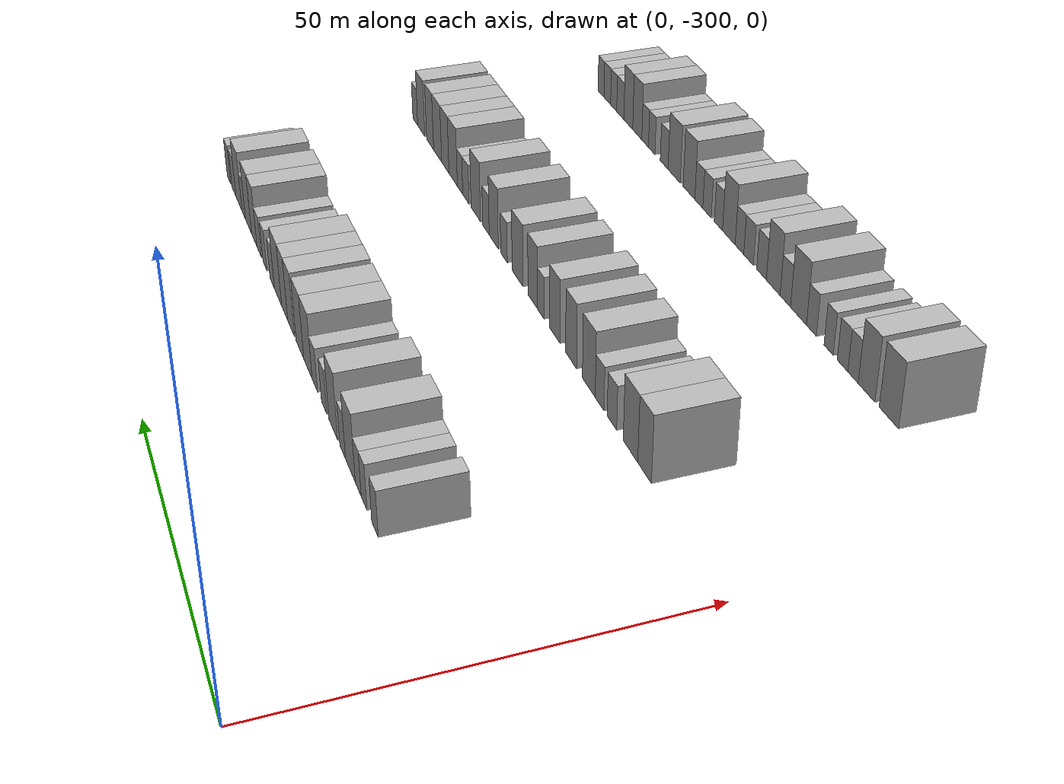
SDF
<sdf version="1.6">
 <world name="default">
  <model name="building_1">
   <static>1</static>
   <pose>25.0000 -277.6647 0 0.000000 0.000000 0.000000</pose>
   <link name="link">
    <pose>0 0 3.00 0 0 0</pose>
    <collision name="collision"><geometry><box><size>10.0000 2.6705 6.0000</size></box></geometry></collision>
    <visual name="visual">
     <cast_shadows>0</cast_shadows>
     <geometry><box><size>10.0000 2.6705 6.0000</size></box></geometry>
     <material>
      <script>
       <uri>model://HANNAS_wall/materials/scripts</uri>
       <uri>model://HANNAS_wall/materials/textures</uri>
       <name>vrc/HANNAS_wall</name>
      </script>
     </material>
    </visual>
   </link>
  </model>
  <model name="building_2">
   <static>1</static>
   <pose>25.0000 -273.0966 0 0.000000 0.000000 0.000000</pose>
   <link name="link">
    <pose>0 0 3.00 0 0 0</pose>
    <collision name="collision"><geometry><box><size>10.0000 2.4657 6.0000</size></box></geometry></collision>
    <visual name="visual">
     <cast_shadows>0</cast_shadows>
     <geometry><box><size>10.0000 2.4657 6.0000</size></box></geometry>
     <material>
      <script>
       <uri>model://HANNAS_wall/materials/scripts</uri>
       <uri>model://HANNAS_wall/materials/textures</uri>
       <name>vrc/HANNAS_wall</name>
      </script>
     </material>
    </visual>
   </link>
  </model>
  <model name="building_3">
   <static>1</static>
   <pose>25.0000 -270.5756 0 0.000000 0.000000 0.000000</pose>
   <link name="link">
    <pose>0 0 3.00 0 0 0</pose>
    <collision name="collision"><geometry><box><size>10.0000 2.5765 6.0000</size></box></geometry></collision>
    <visual name="visual">
     <cast_shadows>0</cast_shadows>
     <geometry><box><size>10.0000 2.5765 6.0000</size></box></geometry>
     <material>
      <script>
       <uri>model://HANNAS_wall/materials/scripts</uri>
       <uri>model://HANNAS_wall/materials/textures</uri>
       <name>vrc/HANNAS_wall</name>
      </script>
     </material>
    </visual>
   </link>
  </model>
  <model name="building_4">
   <static>1</static>
   <pose>25.0000 -267.0598 0 0.000000 0.000000 0.000000</pose>
   <link name="link">
    <pose>0 0 4.50 0 0 0</pose>
    <collision name="collision"><geometry><box><size>10.0000 4.4550 9.0000</size></box></geometry></collision>
    <visual name="visual">
     <cast_shadows>0</cast_shadows>
     <geometry><box><size>10.0000 4.4550 9.0000</size></box></geometry>
     <material>
      <script>
       <uri>model://HANNAS_wall/materials/scripts</uri>
       <uri>model://HANNAS_wall/materials/textures</uri>
       <name>vrc/HANNAS_wall</name>
      </script>
     </material>
    </visual>
   </link>
  </model>
  <model name="building_5">
   <static>1</static>
   <pose>25.0000 -263.5260 0 0.000000 0.000000 0.000000</pose>
   <link name="link">
    <pose>0 0 3.00 0 0 0</pose>
    <collision name="collision"><geometry><box><size>10.0000 2.6125 6.0000</size></box></geometry></collision>
    <visual name="visual">
     <cast_shadows>0</cast_shadows>
     <geometry><box><size>10.0000 2.6125 6.0000</size></box></geometry>
     <material>
      <script>
       <uri>model://HANNAS_wall/materials/scripts</uri>
       <uri>model://HANNAS_wall/materials/textures</uri>
       <name>vrc/HANNAS_wall</name>
      </script>
     </material>
    </visual>
   </link>
  </model>
  <model name="building_6">
   <static>1</static>
   <pose>25.0000 -259.0830 0 0.000000 0.000000 0.000000</pose>
   <link name="link">
    <pose>0 0 4.50 0 0 0</pose>
    <collision name="collision"><geometry><box><size>10.0000 4.2736 9.0000</size></box></geometry></collision>
    <visual name="visual">
     <cast_shadows>0</cast_shadows>
     <geometry><box><size>10.0000 4.2736 9.0000</size></box></geometry>
     <material>
      <script>
       <uri>model://HANNAS_wall/materials/scripts</uri>
       <uri>model://HANNAS_wall/materials/textures</uri>
       <name>vrc/HANNAS_wall</name>
      </script>
     </material>
    </visual>
   </link>
  </model>
  <model name="building_7">
   <static>1</static>
   <pose>25.0000 -254.6149 0 0.000000 0.000000 0.000000</pose>
   <link name="link">
    <pose>0 0 3.00 0 0 0</pose>
    <collision name="collision"><geometry><box><size>10.0000 2.6625 6.0000</size></box></geometry></collision>
    <visual name="visual">
     <cast_shadows>0</cast_shadows>
     <geometry><box><size>10.0000 2.6625 6.0000</size></box></geometry>
     <material>
      <script>
       <uri>model://HANNAS_wall/materials/scripts</uri>
       <uri>model://HANNAS_wall/materials/textures</uri>
       <name>vrc/HANNAS_wall</name>
      </script>
     </material>
    </visual>
   </link>
  </model>
  <model name="building_8">
   <static>1</static>
   <pose>25.0000 -249.8685 0 0.000000 0.000000 0.000000</pose>
   <link name="link">
    <pose>0 0 3.00 0 0 0</pose>
    <collision name="collision"><geometry><box><size>10.0000 2.8305 6.0000</size></box></geometry></collision>
    <visual name="visual">
     <cast_shadows>0</cast_shadows>
     <geometry><box><size>10.0000 2.8305 6.0000</size></box></geometry>
     <material>
      <script>
       <uri>model://HANNAS_wall/materials/scripts</uri>
       <uri>model://HANNAS_wall/materials/textures</uri>
       <name>vrc/HANNAS_wall</name>
      </script>
     </material>
    </visual>
   </link>
  </model>
  <model name="building_9">
   <static>1</static>
   <pose>25.0000 -246.2379 0 0.000000 0.000000 0.000000</pose>
   <link name="link">
    <pose>0 0 4.50 0 0 0</pose>
    <collision name="collision"><geometry><box><size>10.0000 4.4307 9.0000</size></box></geometry></collision>
    <visual name="visual">
     <cast_shadows>0</cast_shadows>
     <geometry><box><size>10.0000 4.4307 9.0000</size></box></geometry>
     <material>
      <script>
       <uri>model://HANNAS_wall/materials/scripts</uri>
       <uri>model://HANNAS_wall/materials/textures</uri>
       <name>vrc/HANNAS_wall</name>
      </script>
     </material>
    </visual>
   </link>
  </model>
  <model name="building_10">
   <static>1</static>
   <pose>25.0000 -241.8874 0 0.000000 0.000000 0.000000</pose>
   <link name="link">
    <pose>0 0 4.50 0 0 0</pose>
    <collision name="collision"><geometry><box><size>10.0000 4.2704 9.0000</size></box></geometry></collision>
    <visual name="visual">
     <cast_shadows>0</cast_shadows>
     <geometry><box><size>10.0000 4.2704 9.0000</size></box></geometry>
     <material>
      <script>
       <uri>model://HANNAS_wall/materials/scripts</uri>
       <uri>model://HANNAS_wall/materials/textures</uri>
       <name>vrc/HANNAS_wall</name>
      </script>
     </material>
    </visual>
   </link>
  </model>
  <model name="building_11">
   <static>1</static>
   <pose>25.0000 -236.8503 0 0.000000 0.000000 0.000000</pose>
   <link name="link">
    <pose>0 0 4.50 0 0 0</pose>
    <collision name="collision"><geometry><box><size>10.0000 3.8038 9.0000</size></box></geometry></collision>
    <visual name="visual">
     <cast_shadows>0</cast_shadows>
     <geometry><box><size>10.0000 3.8038 9.0000</size></box></geometry>
     <material>
      <script>
       <uri>model://HANNAS_wall/materials/scripts</uri>
       <uri>model://HANNAS_wall/materials/textures</uri>
       <name>vrc/HANNAS_wall</name>
      </script>
     </material>
    </visual>
   </link>
  </model>
  <model name="building_12">
   <static>1</static>
   <pose>25.0000 -233.1456 0 0.000000 0.000000 0.000000</pose>
   <link name="link">
    <pose>0 0 4.50 0 0 0</pose>
    <collision name="collision"><geometry><box><size>10.0000 3.6056 9.0000</size></box></geometry></collision>
    <visual name="visual">
     <cast_shadows>0</cast_shadows>
     <geometry><box><size>10.0000 3.6056 9.0000</size></box></geometry>
     <material>
      <script>
       <uri>model://HANNAS_wall/materials/scripts</uri>
       <uri>model://HANNAS_wall/materials/textures</uri>
       <name>vrc/HANNAS_wall</name>
      </script>
     </material>
    </visual>
   </link>
  </model>
  <model name="building_13">
   <static>1</static>
   <pose>25.0000 -229.1303 0 0.000000 0.000000 0.000000</pose>
   <link name="link">
    <pose>0 0 4.50 0 0 0</pose>
    <collision name="collision"><geometry><box><size>10.0000 4.4249 9.0000</size></box></geometry></collision>
    <visual name="visual">
     <cast_shadows>0</cast_shadows>
     <geometry><box><size>10.0000 4.4249 9.0000</size></box></geometry>
     <material>
      <script>
       <uri>model://HANNAS_wall/materials/scripts</uri>
       <uri>model://HANNAS_wall/materials/textures</uri>
       <name>vrc/HANNAS_wall</name>
      </script>
     </material>
    </visual>
   </link>
  </model>
  <model name="building_14">
   <static>1</static>
   <pose>25.0000 -225.5683 0 0.000000 0.000000 0.000000</pose>
   <link name="link">
    <pose>0 0 3.00 0 0 0</pose>
    <collision name="collision"><geometry><box><size>10.0000 2.6992 6.0000</size></box></geometry></collision>
    <visual name="visual">
     <cast_shadows>0</cast_shadows>
     <geometry><box><size>10.0000 2.6992 6.0000</size></box></geometry>
     <material>
      <script>
       <uri>model://HANNAS_wall/materials/scripts</uri>
       <uri>model://HANNAS_wall/materials/textures</uri>
       <name>vrc/HANNAS_wall</name>
      </script>
     </material>
    </visual>
   </link>
  </model>
  <model name="building_15">
   <static>1</static>
   <pose>25.0000 -220.9242 0 0.000000 0.000000 0.000000</pose>
   <link name="link">
    <pose>0 0 3.00 0 0 0</pose>
    <collision name="collision"><geometry><box><size>10.0000 2.5891 6.0000</size></box></geometry></collision>
    <visual name="visual">
     <cast_shadows>0</cast_shadows>
     <geometry><box><size>10.0000 2.5891 6.0000</size></box></geometry>
     <material>
      <script>
       <uri>model://HANNAS_wall/materials/scripts</uri>
       <uri>model://HANNAS_wall/materials/textures</uri>
       <name>vrc/HANNAS_wall</name>
      </script>
     </material>
    </visual>
   </link>
  </model>
  <model name="building_16">
   <static>1</static>
   <pose>25.0000 -217.1886 0 0.000000 0.000000 0.000000</pose>
   <link name="link">
    <pose>0 0 3.00 0 0 0</pose>
    <collision name="collision"><geometry><box><size>10.0000 2.8822 6.0000</size></box></geometry></collision>
    <visual name="visual">
     <cast_shadows>0</cast_shadows>
     <geometry><box><size>10.0000 2.8822 6.0000</size></box></geometry>
     <material>
      <script>
       <uri>model://HANNAS_wall/materials/scripts</uri>
       <uri>model://HANNAS_wall/materials/textures</uri>
       <name>vrc/HANNAS_wall</name>
      </script>
     </material>
    </visual>
   </link>
  </model>
  <model name="building_17">
   <static>1</static>
   <pose>25.0000 -213.9027 0 0.000000 0.000000 0.000000</pose>
   <link name="link">
    <pose>0 0 4.50 0 0 0</pose>
    <collision name="collision"><geometry><box><size>10.0000 3.6897 9.0000</size></box></geometry></collision>
    <visual name="visual">
     <cast_shadows>0</cast_shadows>
     <geometry><box><size>10.0000 3.6897 9.0000</size></box></geometry>
     <material>
      <script>
       <uri>model://HANNAS_wall/materials/scripts</uri>
       <uri>model://HANNAS_wall/materials/textures</uri>
       <name>vrc/HANNAS_wall</name>
      </script>
     </material>
    </visual>
   </link>
  </model>
  <model name="building_18">
   <static>1</static>
   <pose>25.0000 -209.9030 0 0.000000 0.000000 0.000000</pose>
   <link name="link">
    <pose>0 0 4.50 0 0 0</pose>
    <collision name="collision"><geometry><box><size>10.0000 4.3097 9.0000</size></box></geometry></collision>
    <visual name="visual">
     <cast_shadows>0</cast_shadows>
     <geometry><box><size>10.0000 4.3097 9.0000</size></box></geometry>
     <material>
      <script>
       <uri>model://HANNAS_wall/materials/scripts</uri>
       <uri>model://HANNAS_wall/materials/textures</uri>
       <name>vrc/HANNAS_wall</name>
      </script>
     </material>
    </visual>
   </link>
  </model>
  <model name="building_19">
   <static>1</static>
   <pose>25.0000 -206.5455 0 0.000000 0.000000 0.000000</pose>
   <link name="link">
    <pose>0 0 3.00 0 0 0</pose>
    <collision name="collision"><geometry><box><size>10.0000 2.4053 6.0000</size></box></geometry></collision>
    <visual name="visual">
     <cast_shadows>0</cast_shadows>
     <geometry><box><size>10.0000 2.4053 6.0000</size></box></geometry>
     <material>
      <script>
       <uri>model://HANNAS_wall/materials/scripts</uri>
       <uri>model://HANNAS_wall/materials/textures</uri>
       <name>vrc/HANNAS_wall</name>
      </script>
     </material>
    </visual>
   </link>
  </model>
  <model name="building_20">
   <static>1</static>
   <pose>25.0000 -203.1059 0 0.000000 0.000000 0.000000</pose>
   <link name="link">
    <pose>0 0 4.50 0 0 0</pose>
    <collision name="collision"><geometry><box><size>10.0000 4.4738 9.0000</size></box></geometry></collision>
    <visual name="visual">
     <cast_shadows>0</cast_shadows>
     <geometry><box><size>10.0000 4.4738 9.0000</size></box></geometry>
     <material>
      <script>
       <uri>model://HANNAS_wall/materials/scripts</uri>
       <uri>model://HANNAS_wall/materials/textures</uri>
       <name>vrc/HANNAS_wall</name>
      </script>
     </material>
    </visual>
   </link>
  </model>
  <model name="building_21">
   <static>1</static>
   <pose>25.0000 -199.4058 0 0.000000 0.000000 0.000000</pose>
   <link name="link">
    <pose>0 0 3.00 0 0 0</pose>
    <collision name="collision"><geometry><box><size>10.0000 2.9264 6.0000</size></box></geometry></collision>
    <visual name="visual">
     <cast_shadows>0</cast_shadows>
     <geometry><box><size>10.0000 2.9264 6.0000</size></box></geometry>
     <material>
      <script>
       <uri>model://HANNAS_wall/materials/scripts</uri>
       <uri>model://HANNAS_wall/materials/textures</uri>
       <name>vrc/HANNAS_wall</name>
      </script>
     </material>
    </visual>
   </link>
  </model>
  <model name="building_22">
   <static>1</static>
   <pose>25.0000 -195.6194 0 0.000000 0.000000 0.000000</pose>
   <link name="link">
    <pose>0 0 3.00 0 0 0</pose>
    <collision name="collision"><geometry><box><size>10.0000 2.6462 6.0000</size></box></geometry></collision>
    <visual name="visual">
     <cast_shadows>0</cast_shadows>
     <geometry><box><size>10.0000 2.6462 6.0000</size></box></geometry>
     <material>
      <script>
       <uri>model://HANNAS_wall/materials/scripts</uri>
       <uri>model://HANNAS_wall/materials/textures</uri>
       <name>vrc/HANNAS_wall</name>
      </script>
     </material>
    </visual>
   </link>
  </model>
  <model name="building_140">
   <static>1</static>
   <pose>55.0000 -278.0283 0 0.000000 0.000000 0.000000</pose>
   <link name="link">
    <pose>0 0 4.50 0 0 0</pose>
    <collision name="collision"><geometry><box><size>10.0000 3.9434 9.0000</size></box></geometry></collision>
    <visual name="visual">
     <cast_shadows>0</cast_shadows>
     <geometry><box><size>10.0000 3.9434 9.0000</size></box></geometry>
     <material>
      <script>
       <uri>model://HANNAS_wall/materials/scripts</uri>
       <uri>model://HANNAS_wall/materials/textures</uri>
       <name>vrc/HANNAS_wall</name>
      </script>
     </material>
    </visual>
   </link>
  </model>
  <model name="building_141">
   <static>1</static>
   <pose>55.0000 -273.8997 0 0.000000 0.000000 0.000000</pose>
   <link name="link">
    <pose>0 0 4.50 0 0 0</pose>
    <collision name="collision"><geometry><box><size>10.0000 4.3137 9.0000</size></box></geometry></collision>
    <visual name="visual">
     <cast_shadows>0</cast_shadows>
     <geometry><box><size>10.0000 4.3137 9.0000</size></box></geometry>
     <material>
      <script>
       <uri>model://HANNAS_wall/materials/scripts</uri>
       <uri>model://HANNAS_wall/materials/textures</uri>
       <name>vrc/HANNAS_wall</name>
      </script>
     </material>
    </visual>
   </link>
  </model>
  <model name="building_142">
   <static>1</static>
   <pose>55.0000 -268.2562 0 0.000000 0.000000 0.000000</pose>
   <link name="link">
    <pose>0 0 3.00 0 0 0</pose>
    <collision name="collision"><geometry><box><size>10.0000 2.9732 6.0000</size></box></geometry></collision>
    <visual name="visual">
     <cast_shadows>0</cast_shadows>
     <geometry><box><size>10.0000 2.9732 6.0000</size></box></geometry>
     <material>
      <script>
       <uri>model://HANNAS_wall/materials/scripts</uri>
       <uri>model://HANNAS_wall/materials/textures</uri>
       <name>vrc/HANNAS_wall</name>
      </script>
     </material>
    </visual>
   </link>
  </model>
  <model name="building_143">
   <static>1</static>
   <pose>55.0000 -264.3514 0 0.000000 0.000000 0.000000</pose>
   <link name="link">
    <pose>0 0 3.00 0 0 0</pose>
    <collision name="collision"><geometry><box><size>10.0000 2.8364 6.0000</size></box></geometry></collision>
    <visual name="visual">
     <cast_shadows>0</cast_shadows>
     <geometry><box><size>10.0000 2.8364 6.0000</size></box></geometry>
     <material>
      <script>
       <uri>model://HANNAS_wall/materials/scripts</uri>
       <uri>model://HANNAS_wall/materials/textures</uri>
       <name>vrc/HANNAS_wall</name>
      </script>
     </material>
    </visual>
   </link>
  </model>
  <model name="building_144">
   <static>1</static>
   <pose>55.0000 -260.8155 0 0.000000 0.000000 0.000000</pose>
   <link name="link">
    <pose>0 0 4.50 0 0 0</pose>
    <collision name="collision"><geometry><box><size>10.0000 4.2355 9.0000</size></box></geometry></collision>
    <visual name="visual">
     <cast_shadows>0</cast_shadows>
     <geometry><box><size>10.0000 4.2355 9.0000</size></box></geometry>
     <material>
      <script>
       <uri>model://HANNAS_wall/materials/scripts</uri>
       <uri>model://HANNAS_wall/materials/textures</uri>
       <name>vrc/HANNAS_wall</name>
      </script>
     </material>
    </visual>
   </link>
  </model>
  <model name="building_145">
   <static>1</static>
   <pose>55.0000 -254.7947 0 0.000000 0.000000 0.000000</pose>
   <link name="link">
    <pose>0 0 4.50 0 0 0</pose>
    <collision name="collision"><geometry><box><size>10.0000 3.8060 9.0000</size></box></geometry></collision>
    <visual name="visual">
     <cast_shadows>0</cast_shadows>
     <geometry><box><size>10.0000 3.8060 9.0000</size></box></geometry>
     <material>
      <script>
       <uri>model://HANNAS_wall/materials/scripts</uri>
       <uri>model://HANNAS_wall/materials/textures</uri>
       <name>vrc/HANNAS_wall</name>
      </script>
     </material>
    </visual>
   </link>
  </model>
  <model name="building_146">
   <static>1</static>
   <pose>55.0000 -248.9804 0 0.000000 0.000000 0.000000</pose>
   <link name="link">
    <pose>0 0 4.50 0 0 0</pose>
    <collision name="collision"><geometry><box><size>10.0000 3.8227 9.0000</size></box></geometry></collision>
    <visual name="visual">
     <cast_shadows>0</cast_shadows>
     <geometry><box><size>10.0000 3.8227 9.0000</size></box></geometry>
     <material>
      <script>
       <uri>model://HANNAS_wall/materials/scripts</uri>
       <uri>model://HANNAS_wall/materials/textures</uri>
       <name>vrc/HANNAS_wall</name>
      </script>
     </material>
    </visual>
   </link>
  </model>
  <model name="building_147">
   <static>1</static>
   <pose>55.0000 -243.8579 0 0.000000 0.000000 0.000000</pose>
   <link name="link">
    <pose>0 0 3.00 0 0 0</pose>
    <collision name="collision"><geometry><box><size>10.0000 2.4223 6.0000</size></box></geometry></collision>
    <visual name="visual">
     <cast_shadows>0</cast_shadows>
     <geometry><box><size>10.0000 2.4223 6.0000</size></box></geometry>
     <material>
      <script>
       <uri>model://HANNAS_wall/materials/scripts</uri>
       <uri>model://HANNAS_wall/materials/textures</uri>
       <name>vrc/HANNAS_wall</name>
      </script>
     </material>
    </visual>
   </link>
  </model>
  <model name="building_148">
   <static>1</static>
   <pose>55.0000 -240.7868 0 0.000000 0.000000 0.000000</pose>
   <link name="link">
    <pose>0 0 4.50 0 0 0</pose>
    <collision name="collision"><geometry><box><size>10.0000 3.7199 9.0000</size></box></geometry></collision>
    <visual name="visual">
     <cast_shadows>0</cast_shadows>
     <geometry><box><size>10.0000 3.7199 9.0000</size></box></geometry>
     <material>
      <script>
       <uri>model://HANNAS_wall/materials/scripts</uri>
       <uri>model://HANNAS_wall/materials/textures</uri>
       <name>vrc/HANNAS_wall</name>
      </script>
     </material>
    </visual>
   </link>
  </model>
  <model name="building_149">
   <static>1</static>
   <pose>55.0000 -234.7440 0 0.000000 0.000000 0.000000</pose>
   <link name="link">
    <pose>0 0 4.50 0 0 0</pose>
    <collision name="collision"><geometry><box><size>10.0000 4.3656 9.0000</size></box></geometry></collision>
    <visual name="visual">
     <cast_shadows>0</cast_shadows>
     <geometry><box><size>10.0000 4.3656 9.0000</size></box></geometry>
     <material>
      <script>
       <uri>model://HANNAS_wall/materials/scripts</uri>
       <uri>model://HANNAS_wall/materials/textures</uri>
       <name>vrc/HANNAS_wall</name>
      </script>
     </material>
    </visual>
   </link>
  </model>
  <model name="building_150">
   <static>1</static>
   <pose>55.0000 -229.1680 0 0.000000 0.000000 0.000000</pose>
   <link name="link">
    <pose>0 0 3.00 0 0 0</pose>
    <collision name="collision"><geometry><box><size>10.0000 2.7863 6.0000</size></box></geometry></collision>
    <visual name="visual">
     <cast_shadows>0</cast_shadows>
     <geometry><box><size>10.0000 2.7863 6.0000</size></box></geometry>
     <material>
      <script>
       <uri>model://HANNAS_wall/materials/scripts</uri>
       <uri>model://HANNAS_wall/materials/textures</uri>
       <name>vrc/HANNAS_wall</name>
      </script>
     </material>
    </visual>
   </link>
  </model>
  <model name="building_151">
   <static>1</static>
   <pose>55.0000 -224.7935 0 0.000000 0.000000 0.000000</pose>
   <link name="link">
    <pose>0 0 4.50 0 0 0</pose>
    <collision name="collision"><geometry><box><size>10.0000 3.9628 9.0000</size></box></geometry></collision>
    <visual name="visual">
     <cast_shadows>0</cast_shadows>
     <geometry><box><size>10.0000 3.9628 9.0000</size></box></geometry>
     <material>
      <script>
       <uri>model://HANNAS_wall/materials/scripts</uri>
       <uri>model://HANNAS_wall/materials/textures</uri>
       <name>vrc/HANNAS_wall</name>
      </script>
     </material>
    </visual>
   </link>
  </model>
  <model name="building_152">
   <static>1</static>
   <pose>55.0000 -221.3755 0 0.000000 0.000000 0.000000</pose>
   <link name="link">
    <pose>0 0 3.00 0 0 0</pose>
    <collision name="collision"><geometry><box><size>10.0000 2.8732 6.0000</size></box></geometry></collision>
    <visual name="visual">
     <cast_shadows>0</cast_shadows>
     <geometry><box><size>10.0000 2.8732 6.0000</size></box></geometry>
     <material>
      <script>
       <uri>model://HANNAS_wall/materials/scripts</uri>
       <uri>model://HANNAS_wall/materials/textures</uri>
       <name>vrc/HANNAS_wall</name>
      </script>
     </material>
    </visual>
   </link>
  </model>
  <model name="building_153">
   <static>1</static>
   <pose>55.0000 -216.7900 0 0.000000 0.000000 0.000000</pose>
   <link name="link">
    <pose>0 0 4.50 0 0 0</pose>
    <collision name="collision"><geometry><box><size>10.0000 4.2979 9.0000</size></box></geometry></collision>
    <visual name="visual">
     <cast_shadows>0</cast_shadows>
     <geometry><box><size>10.0000 4.2979 9.0000</size></box></geometry>
     <material>
      <script>
       <uri>model://HANNAS_wall/materials/scripts</uri>
       <uri>model://HANNAS_wall/materials/textures</uri>
       <name>vrc/HANNAS_wall</name>
      </script>
     </material>
    </visual>
   </link>
  </model>
  <model name="building_154">
   <static>1</static>
   <pose>55.0000 -212.1634 0 0.000000 0.000000 0.000000</pose>
   <link name="link">
    <pose>0 0 3.00 0 0 0</pose>
    <collision name="collision"><geometry><box><size>10.0000 2.9553 6.0000</size></box></geometry></collision>
    <visual name="visual">
     <cast_shadows>0</cast_shadows>
     <geometry><box><size>10.0000 2.9553 6.0000</size></box></geometry>
     <material>
      <script>
       <uri>model://HANNAS_wall/materials/scripts</uri>
       <uri>model://HANNAS_wall/materials/textures</uri>
       <name>vrc/HANNAS_wall</name>
      </script>
     </material>
    </visual>
   </link>
  </model>
  <model name="building_155">
   <static>1</static>
   <pose>55.0000 -209.4047 0 0.000000 0.000000 0.000000</pose>
   <link name="link">
    <pose>0 0 3.00 0 0 0</pose>
    <collision name="collision"><geometry><box><size>10.0000 2.5619 6.0000</size></box></geometry></collision>
    <visual name="visual">
     <cast_shadows>0</cast_shadows>
     <geometry><box><size>10.0000 2.5619 6.0000</size></box></geometry>
     <material>
      <script>
       <uri>model://HANNAS_wall/materials/scripts</uri>
       <uri>model://HANNAS_wall/materials/textures</uri>
       <name>vrc/HANNAS_wall</name>
      </script>
     </material>
    </visual>
   </link>
  </model>
  <model name="building_156">
   <static>1</static>
   <pose>55.0000 -206.0658 0 0.000000 0.000000 0.000000</pose>
   <link name="link">
    <pose>0 0 4.50 0 0 0</pose>
    <collision name="collision"><geometry><box><size>10.0000 4.1160 9.0000</size></box></geometry></collision>
    <visual name="visual">
     <cast_shadows>0</cast_shadows>
     <geometry><box><size>10.0000 4.1160 9.0000</size></box></geometry>
     <material>
      <script>
       <uri>model://HANNAS_wall/materials/scripts</uri>
       <uri>model://HANNAS_wall/materials/textures</uri>
       <name>vrc/HANNAS_wall</name>
      </script>
     </material>
    </visual>
   </link>
  </model>
  <model name="building_157">
   <static>1</static>
   <pose>55.0000 -202.1648 0 0.000000 0.000000 0.000000</pose>
   <link name="link">
    <pose>0 0 4.50 0 0 0</pose>
    <collision name="collision"><geometry><box><size>10.0000 3.6859 9.0000</size></box></geometry></collision>
    <visual name="visual">
     <cast_shadows>0</cast_shadows>
     <geometry><box><size>10.0000 3.6859 9.0000</size></box></geometry>
     <material>
      <script>
       <uri>model://HANNAS_wall/materials/scripts</uri>
       <uri>model://HANNAS_wall/materials/textures</uri>
       <name>vrc/HANNAS_wall</name>
      </script>
     </material>
    </visual>
   </link>
  </model>
  <model name="building_158">
   <static>1</static>
   <pose>55.0000 -198.2408 0 0.000000 0.000000 0.000000</pose>
   <link name="link">
    <pose>0 0 4.50 0 0 0</pose>
    <collision name="collision"><geometry><box><size>10.0000 4.1621 9.0000</size></box></geometry></collision>
    <visual name="visual">
     <cast_shadows>0</cast_shadows>
     <geometry><box><size>10.0000 4.1621 9.0000</size></box></geometry>
     <material>
      <script>
       <uri>model://HANNAS_wall/materials/scripts</uri>
       <uri>model://HANNAS_wall/materials/textures</uri>
       <name>vrc/HANNAS_wall</name>
      </script>
     </material>
    </visual>
   </link>
  </model>
  <model name="building_159">
   <static>1</static>
   <pose>55.0000 -194.3063 0 0.000000 0.000000 0.000000</pose>
   <link name="link">
    <pose>0 0 4.50 0 0 0</pose>
    <collision name="collision"><geometry><box><size>10.0000 3.7070 9.0000</size></box></geometry></collision>
    <visual name="visual">
     <cast_shadows>0</cast_shadows>
     <geometry><box><size>10.0000 3.7070 9.0000</size></box></geometry>
     <material>
      <script>
       <uri>model://HANNAS_wall/materials/scripts</uri>
       <uri>model://HANNAS_wall/materials/textures</uri>
       <name>vrc/HANNAS_wall</name>
      </script>
     </material>
    </visual>
   </link>
  </model>
  <model name="building_160">
   <static>1</static>
   <pose>55.0000 -189.5073 0 0.000000 0.000000 0.000000</pose>
   <link name="link">
    <pose>0 0 4.50 0 0 0</pose>
    <collision name="collision"><geometry><box><size>10.0000 3.8909 9.0000</size></box></geometry></collision>
    <visual name="visual">
     <cast_shadows>0</cast_shadows>
     <geometry><box><size>10.0000 3.8909 9.0000</size></box></geometry>
     <material>
      <script>
       <uri>model://HANNAS_wall/materials/scripts</uri>
       <uri>model://HANNAS_wall/materials/textures</uri>
       <name>vrc/HANNAS_wall</name>
      </script>
     </material>
    </visual>
   </link>
  </model>
  <model name="building_161">
   <static>1</static>
   <pose>55.0000 -186.2400 0 0.000000 0.000000 0.000000</pose>
   <link name="link">
    <pose>0 0 3.00 0 0 0</pose>
    <collision name="collision"><geometry><box><size>10.0000 2.6438 6.0000</size></box></geometry></collision>
    <visual name="visual">
     <cast_shadows>0</cast_shadows>
     <geometry><box><size>10.0000 2.6438 6.0000</size></box></geometry>
     <material>
      <script>
       <uri>model://HANNAS_wall/materials/scripts</uri>
       <uri>model://HANNAS_wall/materials/textures</uri>
       <name>vrc/HANNAS_wall</name>
      </script>
     </material>
    </visual>
   </link>
  </model>
  <model name="building_284">
   <static>1</static>
   <pose>85.0000 -277.7562 0 0.000000 0.000000 0.000000</pose>
   <link name="link">
    <pose>0 0 4.50 0 0 0</pose>
    <collision name="collision"><geometry><box><size>10.0000 4.4876 9.0000</size></box></geometry></collision>
    <visual name="visual">
     <cast_shadows>0</cast_shadows>
     <geometry><box><size>10.0000 4.4876 9.0000</size></box></geometry>
     <material>
      <script>
       <uri>model://HANNAS_wall/materials/scripts</uri>
       <uri>model://HANNAS_wall/materials/textures</uri>
       <name>vrc/HANNAS_wall</name>
      </script>
     </material>
    </visual>
   </link>
  </model>
  <model name="building_285">
   <static>1</static>
   <pose>85.0000 -272.4827 0 0.000000 0.000000 0.000000</pose>
   <link name="link">
    <pose>0 0 4.50 0 0 0</pose>
    <collision name="collision"><geometry><box><size>10.0000 4.0594 9.0000</size></box></geometry></collision>
    <visual name="visual">
     <cast_shadows>0</cast_shadows>
     <geometry><box><size>10.0000 4.0594 9.0000</size></box></geometry>
     <material>
      <script>
       <uri>model://HANNAS_wall/materials/scripts</uri>
       <uri>model://HANNAS_wall/materials/textures</uri>
       <name>vrc/HANNAS_wall</name>
      </script>
     </material>
    </visual>
   </link>
  </model>
  <model name="building_286">
   <static>1</static>
   <pose>85.0000 -269.1726 0 0.000000 0.000000 0.000000</pose>
   <link name="link">
    <pose>0 0 3.00 0 0 0</pose>
    <collision name="collision"><geometry><box><size>10.0000 2.5609 6.0000</size></box></geometry></collision>
    <visual name="visual">
     <cast_shadows>0</cast_shadows>
     <geometry><box><size>10.0000 2.5609 6.0000</size></box></geometry>
     <material>
      <script>
       <uri>model://HANNAS_wall/materials/scripts</uri>
       <uri>model://HANNAS_wall/materials/textures</uri>
       <name>vrc/HANNAS_wall</name>
      </script>
     </material>
    </visual>
   </link>
  </model>
  <model name="building_287">
   <static>1</static>
   <pose>85.0000 -266.5439 0 0.000000 0.000000 0.000000</pose>
   <link name="link">
    <pose>0 0 3.00 0 0 0</pose>
    <collision name="collision"><geometry><box><size>10.0000 2.6965 6.0000</size></box></geometry></collision>
    <visual name="visual">
     <cast_shadows>0</cast_shadows>
     <geometry><box><size>10.0000 2.6965 6.0000</size></box></geometry>
     <material>
      <script>
       <uri>model://HANNAS_wall/materials/scripts</uri>
       <uri>model://HANNAS_wall/materials/textures</uri>
       <name>vrc/HANNAS_wall</name>
      </script>
     </material>
    </visual>
   </link>
  </model>
  <model name="building_288">
   <static>1</static>
   <pose>85.0000 -262.9903 0 0.000000 0.000000 0.000000</pose>
   <link name="link">
    <pose>0 0 3.00 0 0 0</pose>
    <collision name="collision"><geometry><box><size>10.0000 2.4107 6.0000</size></box></geometry></collision>
    <visual name="visual">
     <cast_shadows>0</cast_shadows>
     <geometry><box><size>10.0000 2.4107 6.0000</size></box></geometry>
     <material>
      <script>
       <uri>model://HANNAS_wall/materials/scripts</uri>
       <uri>model://HANNAS_wall/materials/textures</uri>
       <name>vrc/HANNAS_wall</name>
      </script>
     </material>
    </visual>
   </link>
  </model>
  <model name="building_289">
   <static>1</static>
   <pose>85.0000 -258.4437 0 0.000000 0.000000 0.000000</pose>
   <link name="link">
    <pose>0 0 3.00 0 0 0</pose>
    <collision name="collision"><geometry><box><size>10.0000 2.6825 6.0000</size></box></geometry></collision>
    <visual name="visual">
     <cast_shadows>0</cast_shadows>
     <geometry><box><size>10.0000 2.6825 6.0000</size></box></geometry>
     <material>
      <script>
       <uri>model://HANNAS_wall/materials/scripts</uri>
       <uri>model://HANNAS_wall/materials/textures</uri>
       <name>vrc/HANNAS_wall</name>
      </script>
     </material>
    </visual>
   </link>
  </model>
  <model name="building_290">
   <static>1</static>
   <pose>85.0000 -254.8854 0 0.000000 0.000000 0.000000</pose>
   <link name="link">
    <pose>0 0 4.50 0 0 0</pose>
    <collision name="collision"><geometry><box><size>10.0000 4.4342 9.0000</size></box></geometry></collision>
    <visual name="visual">
     <cast_shadows>0</cast_shadows>
     <geometry><box><size>10.0000 4.4342 9.0000</size></box></geometry>
     <material>
      <script>
       <uri>model://HANNAS_wall/materials/scripts</uri>
       <uri>model://HANNAS_wall/materials/textures</uri>
       <name>vrc/HANNAS_wall</name>
      </script>
     </material>
    </visual>
   </link>
  </model>
  <model name="building_291">
   <static>1</static>
   <pose>85.0000 -251.1893 0 0.000000 0.000000 0.000000</pose>
   <link name="link">
    <pose>0 0 3.00 0 0 0</pose>
    <collision name="collision"><geometry><box><size>10.0000 2.9580 6.0000</size></box></geometry></collision>
    <visual name="visual">
     <cast_shadows>0</cast_shadows>
     <geometry><box><size>10.0000 2.9580 6.0000</size></box></geometry>
     <material>
      <script>
       <uri>model://HANNAS_wall/materials/scripts</uri>
       <uri>model://HANNAS_wall/materials/textures</uri>
       <name>vrc/HANNAS_wall</name>
      </script>
     </material>
    </visual>
   </link>
  </model>
  <model name="building_292">
   <static>1</static>
   <pose>85.0000 -247.6996 0 0.000000 0.000000 0.000000</pose>
   <link name="link">
    <pose>0 0 4.50 0 0 0</pose>
    <collision name="collision"><geometry><box><size>10.0000 4.0214 9.0000</size></box></geometry></collision>
    <visual name="visual">
     <cast_shadows>0</cast_shadows>
     <geometry><box><size>10.0000 4.0214 9.0000</size></box></geometry>
     <material>
      <script>
       <uri>model://HANNAS_wall/materials/scripts</uri>
       <uri>model://HANNAS_wall/materials/textures</uri>
       <name>vrc/HANNAS_wall</name>
      </script>
     </material>
    </visual>
   </link>
  </model>
  <model name="building_293">
   <static>1</static>
   <pose>85.0000 -244.2502 0 0.000000 0.000000 0.000000</pose>
   <link name="link">
    <pose>0 0 3.00 0 0 0</pose>
    <collision name="collision"><geometry><box><size>10.0000 2.8773 6.0000</size></box></geometry></collision>
    <visual name="visual">
     <cast_shadows>0</cast_shadows>
     <geometry><box><size>10.0000 2.8773 6.0000</size></box></geometry>
     <material>
      <script>
       <uri>model://HANNAS_wall/materials/scripts</uri>
       <uri>model://HANNAS_wall/materials/textures</uri>
       <name>vrc/HANNAS_wall</name>
      </script>
     </material>
    </visual>
   </link>
  </model>
  <model name="building_294">
   <static>1</static>
   <pose>85.0000 -240.3375 0 0.000000 0.000000 0.000000</pose>
   <link name="link">
    <pose>0 0 3.00 0 0 0</pose>
    <collision name="collision"><geometry><box><size>10.0000 2.9480 6.0000</size></box></geometry></collision>
    <visual name="visual">
     <cast_shadows>0</cast_shadows>
     <geometry><box><size>10.0000 2.9480 6.0000</size></box></geometry>
     <material>
      <script>
       <uri>model://HANNAS_wall/materials/scripts</uri>
       <uri>model://HANNAS_wall/materials/textures</uri>
       <name>vrc/HANNAS_wall</name>
      </script>
     </material>
    </visual>
   </link>
  </model>
  <model name="building_295">
   <static>1</static>
   <pose>85.0000 -237.5122 0 0.000000 0.000000 0.000000</pose>
   <link name="link">
    <pose>0 0 3.00 0 0 0</pose>
    <collision name="collision"><geometry><box><size>10.0000 2.7027 6.0000</size></box></geometry></collision>
    <visual name="visual">
     <cast_shadows>0</cast_shadows>
     <geometry><box><size>10.0000 2.7027 6.0000</size></box></geometry>
     <material>
      <script>
       <uri>model://HANNAS_wall/materials/scripts</uri>
       <uri>model://HANNAS_wall/materials/textures</uri>
       <name>vrc/HANNAS_wall</name>
      </script>
     </material>
    </visual>
   </link>
  </model>
  <model name="building_296">
   <static>1</static>
   <pose>85.0000 -234.1230 0 0.000000 0.000000 0.000000</pose>
   <link name="link">
    <pose>0 0 4.50 0 0 0</pose>
    <collision name="collision"><geometry><box><size>10.0000 4.0755 9.0000</size></box></geometry></collision>
    <visual name="visual">
     <cast_shadows>0</cast_shadows>
     <geometry><box><size>10.0000 4.0755 9.0000</size></box></geometry>
     <material>
      <script>
       <uri>model://HANNAS_wall/materials/scripts</uri>
       <uri>model://HANNAS_wall/materials/textures</uri>
       <name>vrc/HANNAS_wall</name>
      </script>
     </material>
    </visual>
   </link>
  </model>
  <model name="building_297">
   <static>1</static>
   <pose>85.0000 -230.7344 0 0.000000 0.000000 0.000000</pose>
   <link name="link">
    <pose>0 0 3.00 0 0 0</pose>
    <collision name="collision"><geometry><box><size>10.0000 2.7017 6.0000</size></box></geometry></collision>
    <visual name="visual">
     <cast_shadows>0</cast_shadows>
     <geometry><box><size>10.0000 2.7017 6.0000</size></box></geometry>
     <material>
      <script>
       <uri>model://HANNAS_wall/materials/scripts</uri>
       <uri>model://HANNAS_wall/materials/textures</uri>
       <name>vrc/HANNAS_wall</name>
      </script>
     </material>
    </visual>
   </link>
  </model>
  <model name="building_298">
   <static>1</static>
   <pose>85.0000 -226.9514 0 0.000000 0.000000 0.000000</pose>
   <link name="link">
    <pose>0 0 3.00 0 0 0</pose>
    <collision name="collision"><geometry><box><size>10.0000 2.8644 6.0000</size></box></geometry></collision>
    <visual name="visual">
     <cast_shadows>0</cast_shadows>
     <geometry><box><size>10.0000 2.8644 6.0000</size></box></geometry>
     <material>
      <script>
       <uri>model://HANNAS_wall/materials/scripts</uri>
       <uri>model://HANNAS_wall/materials/textures</uri>
       <name>vrc/HANNAS_wall</name>
      </script>
     </material>
    </visual>
   </link>
  </model>
  <model name="building_299">
   <static>1</static>
   <pose>85.0000 -224.1487 0 0.000000 0.000000 0.000000</pose>
   <link name="link">
    <pose>0 0 3.00 0 0 0</pose>
    <collision name="collision"><geometry><box><size>10.0000 2.7409 6.0000</size></box></geometry></collision>
    <visual name="visual">
     <cast_shadows>0</cast_shadows>
     <geometry><box><size>10.0000 2.7409 6.0000</size></box></geometry>
     <material>
      <script>
       <uri>model://HANNAS_wall/materials/scripts</uri>
       <uri>model://HANNAS_wall/materials/textures</uri>
       <name>vrc/HANNAS_wall</name>
      </script>
     </material>
    </visual>
   </link>
  </model>
  <model name="building_300">
   <static>1</static>
   <pose>85.0000 -220.7113 0 0.000000 0.000000 0.000000</pose>
   <link name="link">
    <pose>0 0 4.50 0 0 0</pose>
    <collision name="collision"><geometry><box><size>10.0000 4.1339 9.0000</size></box></geometry></collision>
    <visual name="visual">
     <cast_shadows>0</cast_shadows>
     <geometry><box><size>10.0000 4.1339 9.0000</size></box></geometry>
     <material>
      <script>
       <uri>model://HANNAS_wall/materials/scripts</uri>
       <uri>model://HANNAS_wall/materials/textures</uri>
       <name>vrc/HANNAS_wall</name>
      </script>
     </material>
    </visual>
   </link>
  </model>
  <model name="building_301">
   <static>1</static>
   <pose>85.0000 -215.4222 0 0.000000 0.000000 0.000000</pose>
   <link name="link">
    <pose>0 0 4.50 0 0 0</pose>
    <collision name="collision"><geometry><box><size>10.0000 4.4443 9.0000</size></box></geometry></collision>
    <visual name="visual">
     <cast_shadows>0</cast_shadows>
     <geometry><box><size>10.0000 4.4443 9.0000</size></box></geometry>
     <material>
      <script>
       <uri>model://HANNAS_wall/materials/scripts</uri>
       <uri>model://HANNAS_wall/materials/textures</uri>
       <name>vrc/HANNAS_wall</name>
      </script>
     </material>
    </visual>
   </link>
  </model>
  <model name="building_302">
   <static>1</static>
   <pose>85.0000 -211.7418 0 0.000000 0.000000 0.000000</pose>
   <link name="link">
    <pose>0 0 3.00 0 0 0</pose>
    <collision name="collision"><geometry><box><size>10.0000 2.9165 6.0000</size></box></geometry></collision>
    <visual name="visual">
     <cast_shadows>0</cast_shadows>
     <geometry><box><size>10.0000 2.9165 6.0000</size></box></geometry>
     <material>
      <script>
       <uri>model://HANNAS_wall/materials/scripts</uri>
       <uri>model://HANNAS_wall/materials/textures</uri>
       <name>vrc/HANNAS_wall</name>
      </script>
     </material>
    </visual>
   </link>
  </model>
  <model name="building_303">
   <static>1</static>
   <pose>85.0000 -207.0314 0 0.000000 0.000000 0.000000</pose>
   <link name="link">
    <pose>0 0 3.00 0 0 0</pose>
    <collision name="collision"><geometry><box><size>10.0000 2.5044 6.0000</size></box></geometry></collision>
    <visual name="visual">
     <cast_shadows>0</cast_shadows>
     <geometry><box><size>10.0000 2.5044 6.0000</size></box></geometry>
     <material>
      <script>
       <uri>model://HANNAS_wall/materials/scripts</uri>
       <uri>model://HANNAS_wall/materials/textures</uri>
       <name>vrc/HANNAS_wall</name>
      </script>
     </material>
    </visual>
   </link>
  </model>
  <model name="building_304">
   <static>1</static>
   <pose>85.0000 -204.4778 0 0.000000 0.000000 0.000000</pose>
   <link name="link">
    <pose>0 0 3.00 0 0 0</pose>
    <collision name="collision"><geometry><box><size>10.0000 2.6028 6.0000</size></box></geometry></collision>
    <visual name="visual">
     <cast_shadows>0</cast_shadows>
     <geometry><box><size>10.0000 2.6028 6.0000</size></box></geometry>
     <material>
      <script>
       <uri>model://HANNAS_wall/materials/scripts</uri>
       <uri>model://HANNAS_wall/materials/textures</uri>
       <name>vrc/HANNAS_wall</name>
      </script>
     </material>
    </visual>
   </link>
  </model>
  <model name="building_305">
   <static>1</static>
   <pose>85.0000 -201.3697 0 0.000000 0.000000 0.000000</pose>
   <link name="link">
    <pose>0 0 4.50 0 0 0</pose>
    <collision name="collision"><geometry><box><size>10.0000 3.6132 9.0000</size></box></geometry></collision>
    <visual name="visual">
     <cast_shadows>0</cast_shadows>
     <geometry><box><size>10.0000 3.6132 9.0000</size></box></geometry>
     <material>
      <script>
       <uri>model://HANNAS_wall/materials/scripts</uri>
       <uri>model://HANNAS_wall/materials/textures</uri>
       <name>vrc/HANNAS_wall</name>
      </script>
     </material>
    </visual>
   </link>
  </model>
  <model name="building_306">
   <static>1</static>
   <pose>85.0000 -197.7506 0 0.000000 0.000000 0.000000</pose>
   <link name="link">
    <pose>0 0 4.50 0 0 0</pose>
    <collision name="collision"><geometry><box><size>10.0000 3.6250 9.0000</size></box></geometry></collision>
    <visual name="visual">
     <cast_shadows>0</cast_shadows>
     <geometry><box><size>10.0000 3.6250 9.0000</size></box></geometry>
     <material>
      <script>
       <uri>model://HANNAS_wall/materials/scripts</uri>
       <uri>model://HANNAS_wall/materials/textures</uri>
       <name>vrc/HANNAS_wall</name>
      </script>
     </material>
    </visual>
   </link>
  </model>
  <model name="building_307">
   <static>1</static>
   <pose>85.0000 -194.4628 0 0.000000 0.000000 0.000000</pose>
   <link name="link">
    <pose>0 0 3.00 0 0 0</pose>
    <collision name="collision"><geometry><box><size>10.0000 2.9506 6.0000</size></box></geometry></collision>
    <visual name="visual">
     <cast_shadows>0</cast_shadows>
     <geometry><box><size>10.0000 2.9506 6.0000</size></box></geometry>
     <material>
      <script>
       <uri>model://HANNAS_wall/materials/scripts</uri>
       <uri>model://HANNAS_wall/materials/textures</uri>
       <name>vrc/HANNAS_wall</name>
      </script>
     </material>
    </visual>
   </link>
  </model>
  <model name="building_308">
   <static>1</static>
   <pose>85.0000 -191.7031 0 0.000000 0.000000 0.000000</pose>
   <link name="link">
    <pose>0 0 3.00 0 0 0</pose>
    <collision name="collision"><geometry><box><size>10.0000 2.5688 6.0000</size></box></geometry></collision>
    <visual name="visual">
     <cast_shadows>0</cast_shadows>
     <geometry><box><size>10.0000 2.5688 6.0000</size></box></geometry>
     <material>
      <script>
       <uri>model://HANNAS_wall/materials/scripts</uri>
       <uri>model://HANNAS_wall/materials/textures</uri>
       <name>vrc/HANNAS_wall</name>
      </script>
     </material>
    </visual>
   </link>
  </model>
  <model name="building_309">
   <static>1</static>
   <pose>85.0000 -188.9974 0 0.000000 0.000000 0.000000</pose>
   <link name="link">
    <pose>0 0 3.00 0 0 0</pose>
    <collision name="collision"><geometry><box><size>10.0000 2.8425 6.0000</size></box></geometry></collision>
    <visual name="visual">
     <cast_shadows>0</cast_shadows>
     <geometry><box><size>10.0000 2.8425 6.0000</size></box></geometry>
     <material>
      <script>
       <uri>model://HANNAS_wall/materials/scripts</uri>
       <uri>model://HANNAS_wall/materials/textures</uri>
       <name>vrc/HANNAS_wall</name>
      </script>
     </material>
    </visual>
   </link>
  </model>
  <model name="building_310">
   <static>1</static>
   <pose>85.0000 -186.3046 0 0.000000 0.000000 0.000000</pose>
   <link name="link">
    <pose>0 0 3.00 0 0 0</pose>
    <collision name="collision"><geometry><box><size>10.0000 2.5431 6.0000</size></box></geometry></collision>
    <visual name="visual">
     <cast_shadows>0</cast_shadows>
     <geometry><box><size>10.0000 2.5431 6.0000</size></box></geometry>
     <material>
      <script>
       <uri>model://HANNAS_wall/materials/scripts</uri>
       <uri>model://HANNAS_wall/materials/textures</uri>
       <name>vrc/HANNAS_wall</name>
      </script>
     </material>
    </visual>
   </link>
  </model>
 </world>
</sdf>
